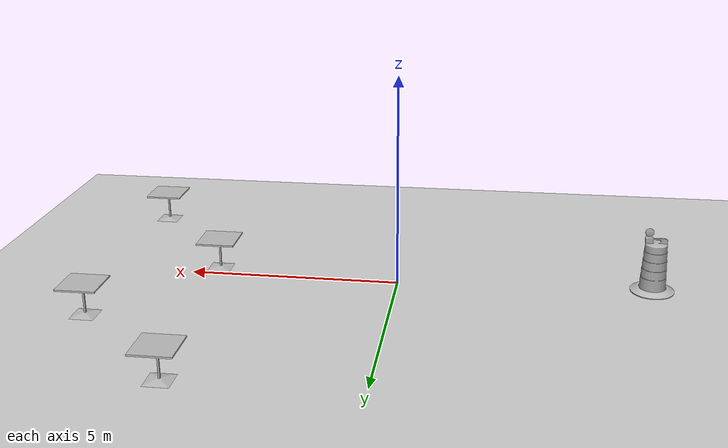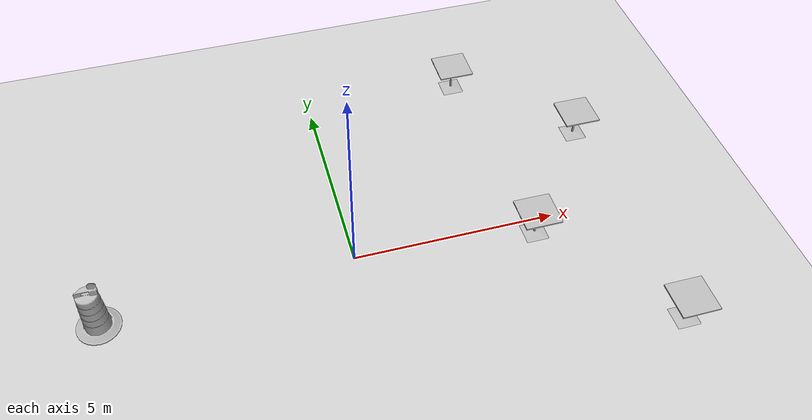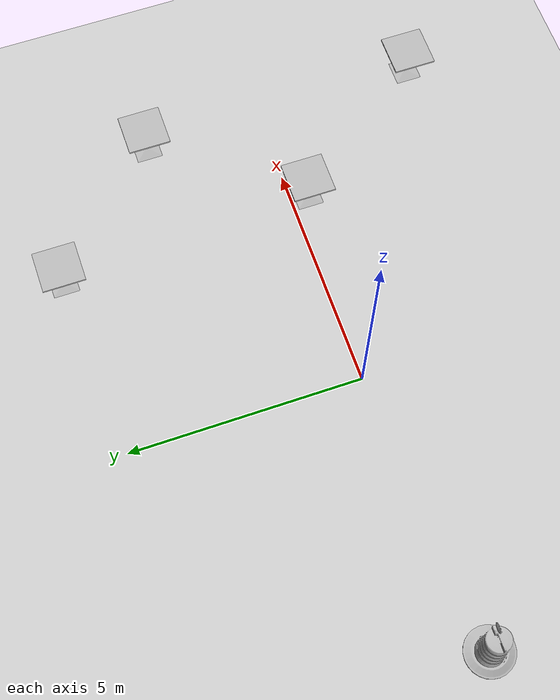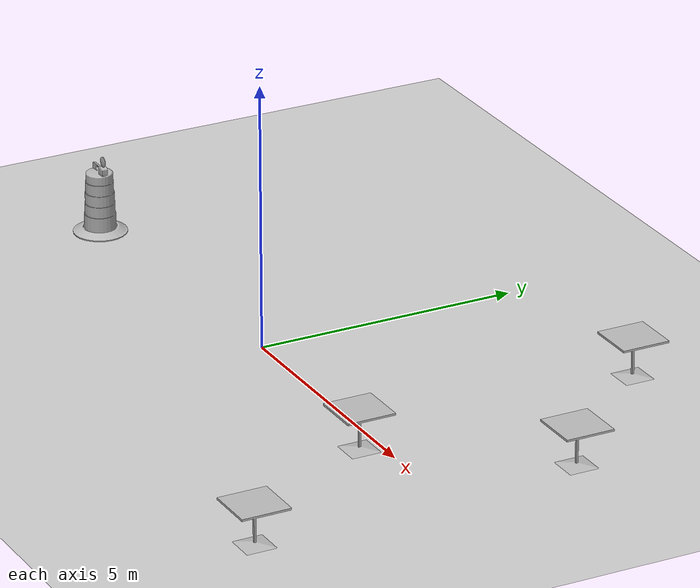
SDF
<sdf version="1.7">
 <world name="default">
  <model name="ground_plane">
   <static>0</static>
   <link name="link">
    <collision name="collision">
     <geometry><plane><normal>0 0 1</normal><size>100 100</size></plane></geometry>
     <surface><friction><ode><mu>100</mu><mu2>50</mu2></ode></friction></surface>
    </collision>
    <visual name="visual">
     <cast_shadows>0</cast_shadows>
     <geometry><plane><normal>0 0 1</normal><size>100 100</size></plane></geometry>
     <material>
      <script><uri>file://media/materials/scripts/gazebo.material</uri><name>Gazebo/Grey</name></script>
     </material>
    </visual>
   </link>
  </model>
  <light name="sun" type="directional">
   <pose>0 0 10 0 -0 0</pose>
   <diffuse>0.8 0.8 0.8 1</diffuse>
   <specular>0.2 0.2 0.2 1</specular>
   <attenuation>
    <range>1000</range>
    <constant>0.9</constant>
    <linear>0.01</linear>
    <quadratic>0.001</quadratic>
   </attenuation>
   <direction>-0.5 0.1 -0.9</direction>
   <spot><inner_angle>0</inner_angle><outer_angle>0</outer_angle><falloff>0</falloff></spot>
  </light>
  <scene><shadows>0</shadows><ambient>0.4 0.4 0.4 1</ambient><background>0.7 0.7 0.7 1</background></scene>
  <physics type="ode">
   <real_time_update_rate>1000</real_time_update_rate>
   <max_step_size>0.001</max_step_size>
   <real_time_factor>1</real_time_factor>
   <ode>
    <solver>
     <type>quick</type>
     <iters>150</iters>
     <precon_iters>0</precon_iters>
     <sor>1.4</sor>
     <use_dynamic_moi_rescaling>1</use_dynamic_moi_rescaling>
    </solver>
    <constraints>
     <cfm>1e-05</cfm>
     <erp>0.2</erp>
     <contact_max_correcting_vel>2000</contact_max_correcting_vel>
     <contact_surface_layer>0.01</contact_surface_layer>
    </constraints>
   </ode>
  </physics>
  <gravity>0 0 -9.8</gravity>
  <magnetic_field>6e-06 2.3e-05 -4.2e-05</magnetic_field>
  <atmosphere type="adiabatic"/>
  <audio><device>default</device></audio>
  <spherical_coordinates>
   <surface_model>EARTH_WGS84</surface_model>
   <latitude_deg>0</latitude_deg>
   <longitude_deg>0</longitude_deg>
   <elevation>0</elevation>
   <heading_deg>0</heading_deg>
  </spherical_coordinates>
  <model name="cafe_table">
   <static>0</static>
   <link name="link">
    <collision name="surface">
     <pose>0 0 0.755 0 -0 0</pose>
     <geometry><box><size>0.913 0.913 0.04</size></box></geometry>
    </collision>
    <collision name="column">
     <pose>0 0 0.37 0 -0 0</pose>
     <geometry><box><size>0.042 0.042 0.74</size></box></geometry>
    </collision>
    <collision name="base">
     <pose>0 0 0.02 0 -0 0</pose>
     <geometry><box><size>0.56 0.56 0.04</size></box></geometry>
    </collision>
    <visual name="visual">
     <geometry><mesh><uri>model://cafe_table/meshes/cafe_table.dae</uri></mesh></geometry>
    </visual>
   </link>
   <pose>4.07645 5.20612 0 0 -0 0</pose>
  </model>
  <model name="cafe_table_0">
   <static>0</static>
   <link name="link">
    <collision name="surface">
     <pose>0 0 0.755 0 -0 0</pose>
     <geometry><box><size>0.913 0.913 0.04</size></box></geometry>
    </collision>
    <collision name="column">
     <pose>0 0 0.37 0 -0 0</pose>
     <geometry><box><size>0.042 0.042 0.74</size></box></geometry>
    </collision>
    <collision name="base">
     <pose>0 0 0.02 0 -0 0</pose>
     <geometry><box><size>0.56 0.56 0.04</size></box></geometry>
    </collision>
    <visual name="visual">
     <geometry><mesh><uri>model://cafe_table/meshes/cafe_table.dae</uri></mesh></geometry>
    </visual>
   </link>
   <pose>6.67246 2.59047 0 0 -0 0</pose>
  </model>
  <model name="cafe_table_1">
   <static>0</static>
   <link name="link">
    <collision name="surface">
     <pose>0 0 0.755 0 -0 0</pose>
     <geometry><box><size>0.913 0.913 0.04</size></box></geometry>
    </collision>
    <collision name="column">
     <pose>0 0 0.37 0 -0 0</pose>
     <geometry><box><size>0.042 0.042 0.74</size></box></geometry>
    </collision>
    <collision name="base">
     <pose>0 0 0.02 0 -0 0</pose>
     <geometry><box><size>0.56 0.56 0.04</size></box></geometry>
    </collision>
    <visual name="visual">
     <geometry><mesh><uri>model://cafe_table/meshes/cafe_table.dae</uri></mesh></geometry>
    </visual>
   </link>
   <pose>4.41055 -0.374907 0 0 -0 0</pose>
  </model>
  <model name="cafe_table_2">
   <static>0</static>
   <link name="link">
    <collision name="surface">
     <pose>0 0 0.755 0 -0 0</pose>
     <geometry><box><size>0.913 0.913 0.04</size></box></geometry>
    </collision>
    <collision name="column">
     <pose>0 0 0.37 0 -0 0</pose>
     <geometry><box><size>0.042 0.042 0.74</size></box></geometry>
    </collision>
    <collision name="base">
     <pose>0 0 0.02 0 -0 0</pose>
     <geometry><box><size>0.56 0.56 0.04</size></box></geometry>
    </collision>
    <visual name="visual">
     <geometry><mesh><uri>model://cafe_table/meshes/cafe_table.dae</uri></mesh></geometry>
    </visual>
   </link>
   <pose>6.7614 -3.56603 0 0 -0 0</pose>
  </model>
  <model name="Construction Barrel">
   <link name="link">
    <inertial>
     <pose>0 0 0.4 0 -0 0</pose>
     <mass>500</mass>
     <inertia><ixx>51.2096</ixx><iyy>51.2096</iyy><izz>25</izz><ixy>0</ixy><ixz>0</ixz><iyz>0</iyz></inertia>
    </inertial>
    <collision name="collision">
     <geometry><mesh><uri>model://construction_barrel/meshes/construction_barrel.dae</uri></mesh></geometry>
    </collision>
    <visual name="visual">
     <geometry><mesh><uri>model://construction_barrel/meshes/construction_barrel.dae</uri></mesh></geometry>
    </visual>
   </link>
   <pose>-5.94956 -0.331972 -0 0 -0 0</pose>
  </model>
 </world>
</sdf>
